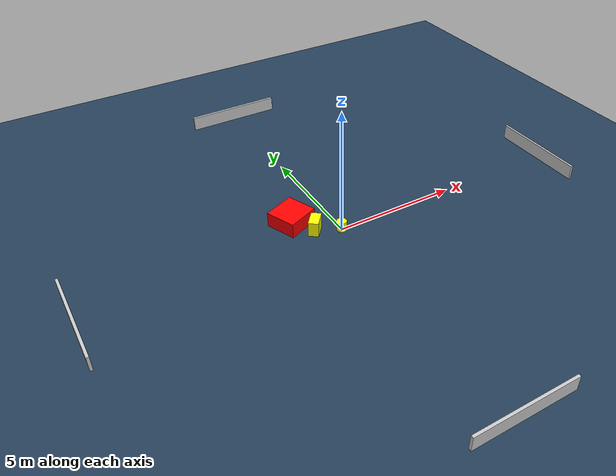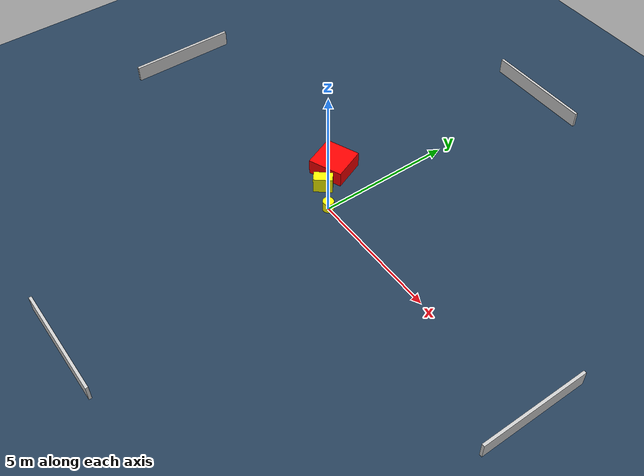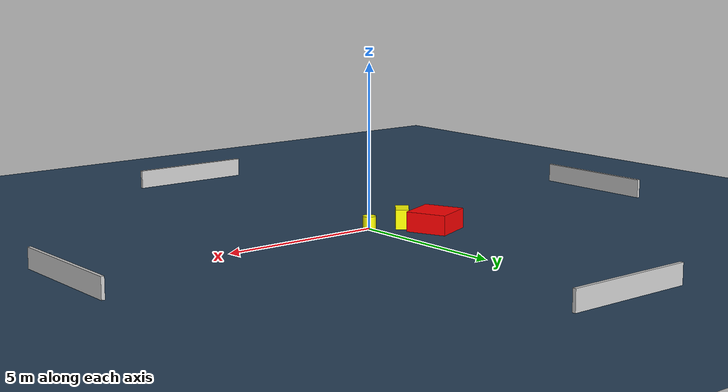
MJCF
<?xml version="1.0" ?>
<mujoco model="generated_environment">
  <option timestep="0.01" integrator="RK4" cone="elliptic"/>
  <default>
    <geom density="1"/>
  </default>
  <asset>
    <texture builtin="gradient" height="3072" name="skybox" rgb1="0.3 0.5 0.7" rgb2="0 0 0" type="skybox" width="512"/>
    <texture builtin="checker" height="300" name="groundplane" rgb1="0.2 0.3 0.4" rgb2="0.1 0.2 0.3" type="2d" width="300"/>
    <material name="groundplane" reflectance="0.2" texrepeat="5 5" texture="groundplane"/>
  </asset>
  <worldbody>
    <light dir="0 0 -1" directional="true" pos="0 0 1.5"/>
    <geom condim="3" friction="0.5 0.005 0.001" material="groundplane" name="floor" pos="0 0 0" size="0 0 0.05" type="plane"/>
    <body name="walls">
      <geom name="wall_1" condim="4" pos="-10.0 0.0 0.3" rgba="0.800000011920929 0.800000011920929 0.800000011920929 1.0" size="0.05 2.0 0.3" type="box"/>
      <geom name="wall_2" condim="4" pos="10.0 0.0 0.3" rgba="0.800000011920929 0.800000011920929 0.800000011920929 1.0" size="0.05 2.0 0.3" type="box"/>
      <geom name="wall_3" condim="4" pos="0.0 -10.0 0.3" rgba="0.800000011920929 0.800000011920929 0.800000011920929 1.0" size="2.0 0.05 0.3" type="box"/>
      <geom name="wall_4" condim="4" pos="0.0 10.0 0.3" rgba="0.800000011920929 0.800000011920929 0.800000011920929 1.0" size="2.0 0.05 0.3" type="box"/>
    </body>
    <body name="robot">
      <joint name="joint_x" type="slide" pos="0 0 0" axis="1 0 0"/>
      <joint name="joint_y" type="slide" pos="0 0 0" axis="0 1 0"/>
      <geom name="robot" type="cylinder" pos="0.0 0.0 0.2" size="0.2 0.2 0.0" mass="5.0" friction="1.0 0.005 0.0001" condim="4" rgba="1.0 1.0 0.0 1.0"/>
    </body>
    <body name="obstacle_1_movable">
      <geom name="obstacle_1_movable" condim="4" pos="-0.9152093189947148 0.4376438296367905 0.3" euler="0 0 140.40547444062167" friction="0.0 0.005 0.001" rgba="1.0 1.0 0.0 1.0" size="0.2001778408447011 0.343289420079956 0.3" type="box" mass="0.1"/>
      <joint type="free"/>
    </body>
    <body name="obstacle_2_static">
      <geom name="obstacle_2_static" condim="4" pos="-1.4638466106243169 1.3108785667832366 0.3" euler="0 0 202.3930134913278" friction="0.0 0.005 0.001" rgba="1.0 0.0 0.0 1.0" size="0.6506112651847666 0.6254311884601619 0.3" type="box"/>
    </body>
  </worldbody>
  <actuator>
    <motor name="actuator_x" joint="joint_x" gear="1" ctrlrange="-1 1"/>
    <motor name="actuator_y" joint="joint_y" gear="1" ctrlrange="-1 1"/>
  </actuator>
</mujoco>
